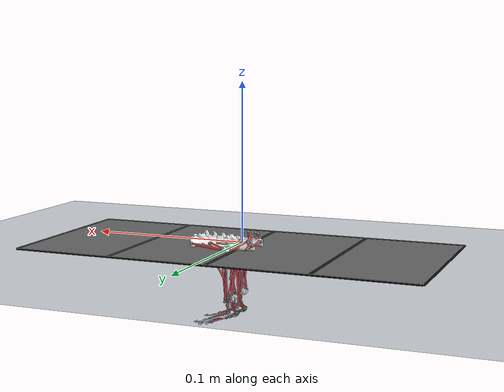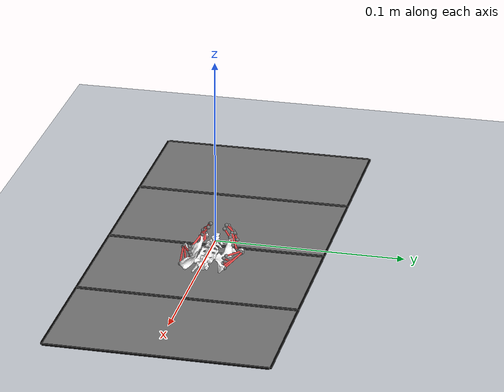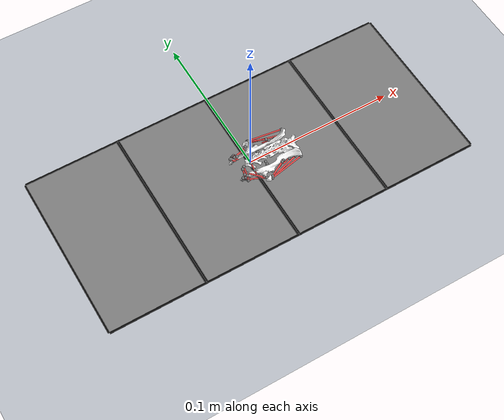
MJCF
<mujoco>
    <include file="converted/rat_hindlimb_bilateral_cvt2.xml"/>

    <visual>
        <headlight diffuse="0.6 0.6 0.6" ambient="0.3 0.3 0.3" specular="0 0 0"/>
        <rgba haze="0.15 0.25 0.35 1"/>
        <global azimuth="150" elevation="-20"/>
    </visual>

    <asset>
        <texture type="skybox" builtin="gradient" rgb1="0.3 0.5 0.7" rgb2="0 0 0" width="512" height="3072"/>
        <texture type="2d" name="groundplane" builtin="checker" mark="edge" rgb1="0.2 0.3 0.4" rgb2="0.1 0.2 0.3"
        markrgb="0.8 0.8 0.8" width="300" height="300"/>
        <material name="groundplane" texture="groundplane" texuniform="true" texrepeat="5 5" reflectance="0.2"/>
    </asset>
    <worldbody>
        <light pos="0 0 1.5" dir="0 0 -1" directional="false"/>
        <geom name="floor" size="0 0 .05" pos="0 0 -0.004" type="plane" material="groundplane"/>

        <!-- Force plates -->
        <body name="force_plate_1" pos="-0.09525 0.0 -0.003">
            <geom type="box" size="0.03175 5.71500015e-02 4.76837158e-09" rgba="0.5 0.5 0.5 1" contype="1"/>
            <!-- Borders for force_plate_1 -->
            <geom type="box" name="fp1_border_top"    pos="0 0.05765 0" size="0.03175 0.0005 0.0005" rgba="0 0 0 1"/>
            <geom type="box" name="fp1_border_bottom" pos="0 -0.05765 0" size="0.03175 0.0005 0.0005" rgba="0 0 0 1"/>
            <geom type="box" name="fp1_border_right"  pos="0.03225 0 0" size="0.0005 0.05715 0.0005" rgba="0 0 0 1"/>
            <geom type="box" name="fp1_border_left"   pos="-0.03225 0 0" size="0.0005 0.05715 0.0005" rgba="0 0 0 1"/>
        </body>
        <body name="force_plate_2" pos="-0.03175 0.0 -0.003">
            <geom type="box" size="0.03175 5.71500015e-02 4.76837158e-09" rgba="0.5 0.5 0.5 1" contype="1"/>
            <!-- Borders for force_plate_2 -->
            <geom type="box" name="fp2_border_top"    pos="0 0.05765 0" size="0.03175 0.0005 0.0005" rgba="0 0 0 1"/>
            <geom type="box" name="fp2_border_bottom" pos="0 -0.05765 0" size="0.03175 0.0005 0.0005" rgba="0 0 0 1"/>
            <geom type="box" name="fp2_border_right"  pos="0.03225 0 0" size="0.0005 0.05715 0.0005" rgba="0 0 0 1"/>
            <geom type="box" name="fp2_border_left"   pos="-0.03225 0 0" size="0.0005 0.05715 0.0005" rgba="0 0 0 1"/>
        </body>
        <body name="force_plate_3" pos="0.03175 0.0 -0.003">
            <geom type="box" size="0.03175 5.71500015e-02 4.76837158e-09" rgba="0.5 0.5 0.5 1" contype="1"/>
             <!-- Borders for force_plate_3 -->
            <geom type="box" name="fp3_border_top"    pos="0 0.05765 0" size="0.03175 0.0005 0.0005" rgba="0 0 0 1"/>
            <geom type="box" name="fp3_border_bottom" pos="0 -0.05765 0" size="0.03175 0.0005 0.0005" rgba="0 0 0 1"/>
            <geom type="box" name="fp3_border_right"  pos="0.03225 0 0" size="0.0005 0.05715 0.0005" rgba="0 0 0 1"/>
            <geom type="box" name="fp3_border_left"   pos="-0.03225 0 0" size="0.0005 0.05715 0.0005" rgba="0 0 0 1"/>
        </body>
        <body name="force_plate_4" pos="0.09525 0.0 -0.003">
            <geom type="box" size="0.03175 5.71500015e-02 4.76837158e-09" rgba="0.5 0.5 0.5 1" contype="1"/>
            <!-- Borders for force_plate_4 -->
            <geom type="box" name="fp4_border_top"    pos="0 0.05765 0" size="0.03175 0.0005 0.0005" rgba="0 0 0 1"/>
            <geom type="box" name="fp4_border_bottom" pos="0 -0.05765 0" size="0.03175 0.0005 0.0005" rgba="0 0 0 1"/>
            <geom type="box" name="fp4_border_right"  pos="0.03225 0 0" size="0.0005 0.05715 0.0005" rgba="0 0 0 1"/>
            <geom type="box" name="fp4_border_left"   pos="-0.03225 0 0" size="0.0005 0.05715 0.0005" rgba="0 0 0 1"/>
        </body>
    </worldbody>
</mujoco>
